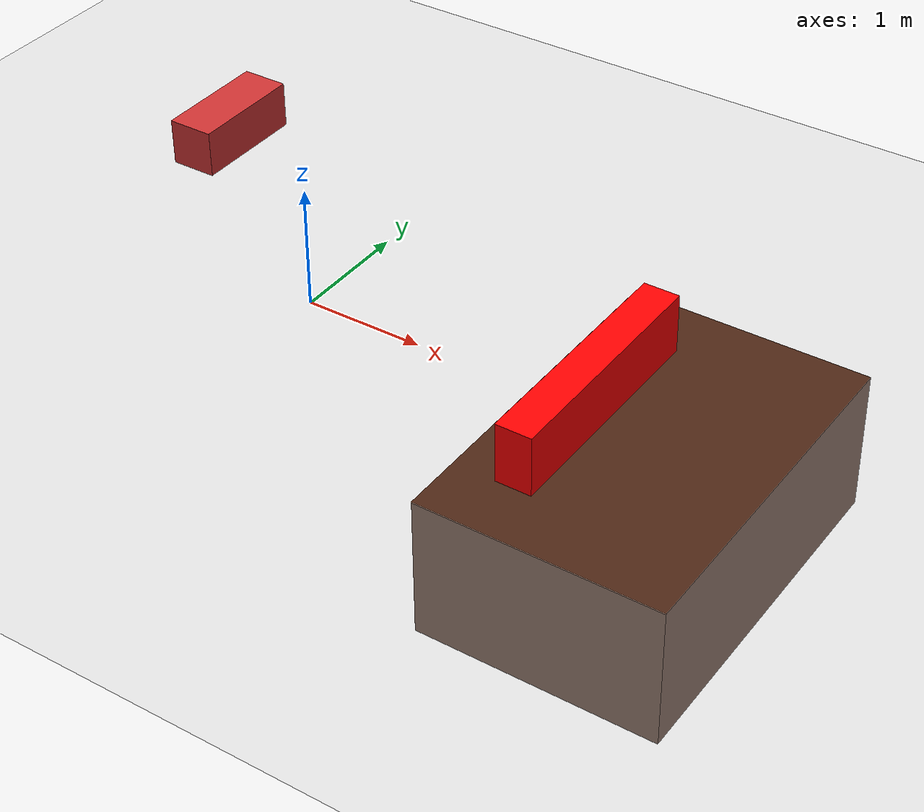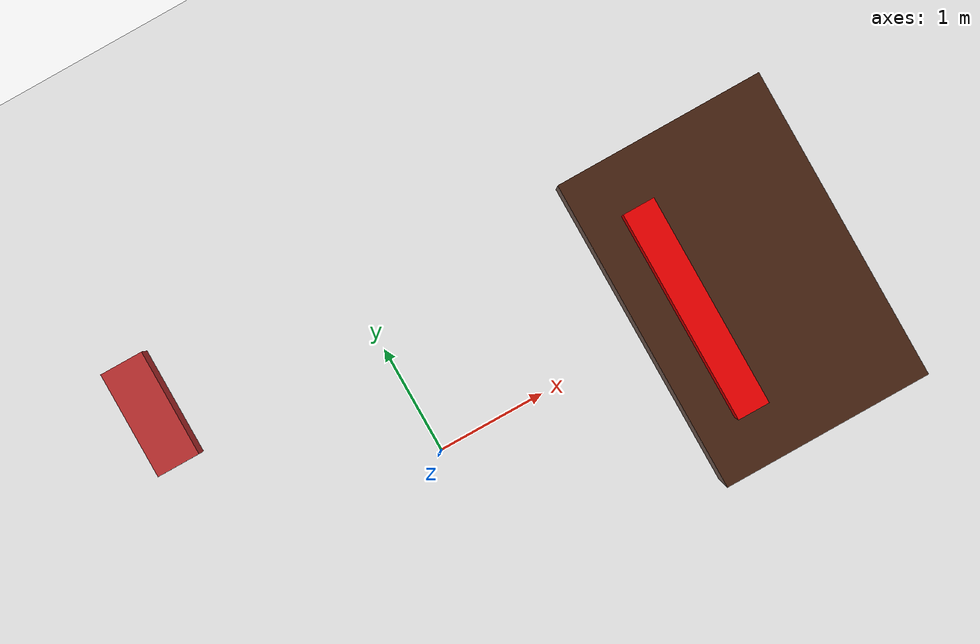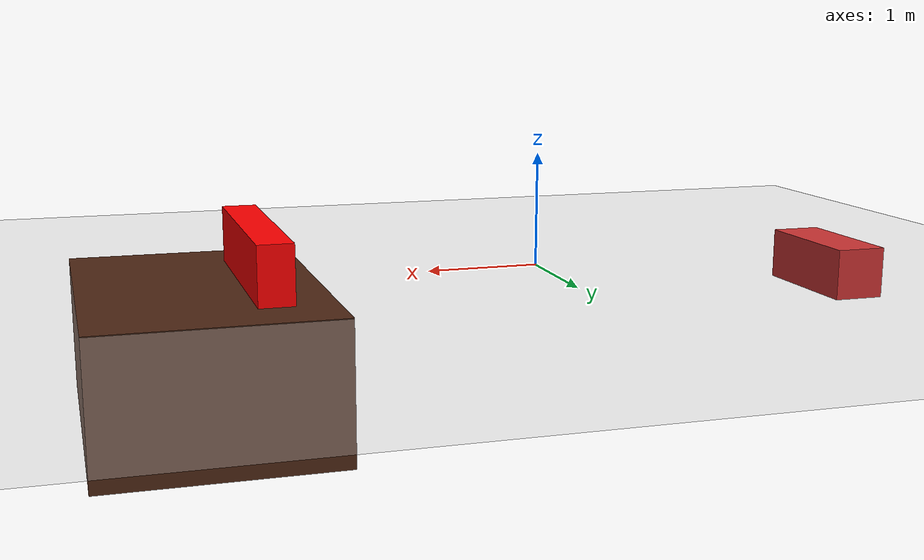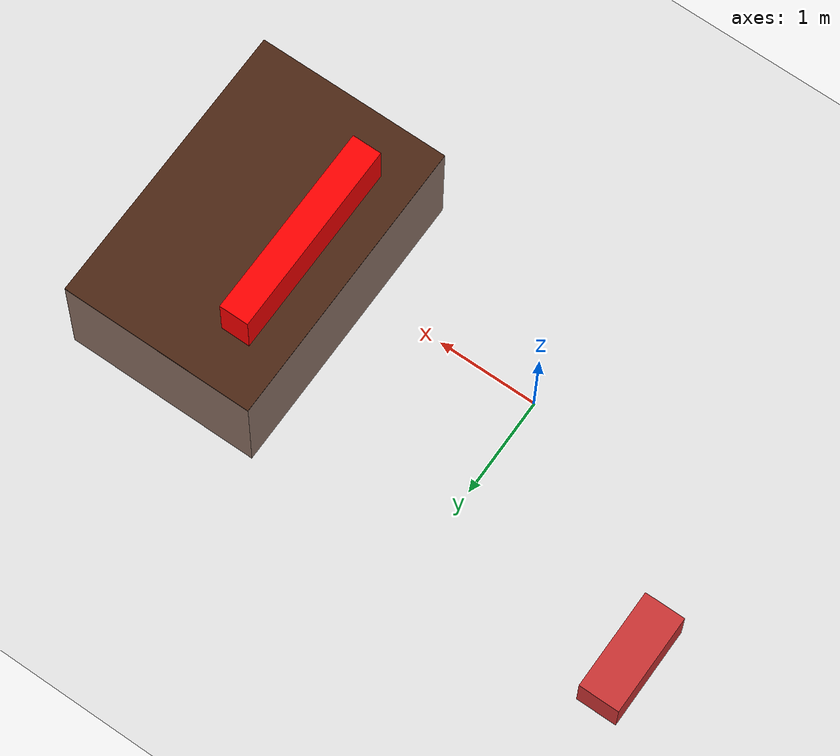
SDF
<?xml version="1.0"?>
<sdf version="1.9">
  <world name="terrain_world">

    <physics name="1ms" type="ignored">
      <max_step_size>0.001</max_step_size>
      <real_time_factor>1.0</real_time_factor>
    </physics>

    <plugin filename="gz-sim-physics-system" name="gz::sim::systems::Physics"/>
    <plugin filename="gz-sim-user-commands-system" name="gz::sim::systems::UserCommands"/>
    <plugin filename="gz-sim-scene-broadcaster-system" name="gz::sim::systems::SceneBroadcaster"/>
    <plugin filename="gz-sim-sensors-system" name="gz::sim::systems::Sensors">
      <render_engine>ogre2</render_engine>
    </plugin>

    <light type="directional" name="sun">
      <cast_shadows>true</cast_shadows>
      <pose>0 0 10 0 0 0</pose>
      <diffuse>0.8 0.8 0.8 1</diffuse>
      <specular>0.2 0.2 0.2 1</specular>
      <attenuation>
        <range>1000</range>
        <constant>0.9</constant>
        <linear>0.01</linear>
        <quadratic>0.001</quadratic>
      </attenuation>
      <direction>-0.5 0.1 -0.9</direction>
    </light>

    <!-- Ground plane -->
    <model name="ground_plane">
      <static>true</static>
      <link name="link">
        <collision name="collision">
          <geometry>
            <plane>
              <normal>0 0 1</normal>
            </plane>
          </geometry>
        </collision>
        <visual name="visual">
          <geometry>
            <plane>
              <normal>0 0 1</normal>
              <size>100 100</size>
            </plane>
          </geometry>
          <material>
            <ambient>0.8 0.8 0.8 1</ambient>
            <diffuse>0.8 0.8 0.8 1</diffuse>
          </material>
        </visual>
      </link>
    </model>

    <!-- VISIBLE OBSTACLE 1 (Red box as "ditch marker") -->
    <model name="obstacle_1">
      <static>true</static>
      <pose>2.5 0 0.25 0 0 0</pose>
      <link name="link">
        <collision name="collision">
          <geometry>
            <box>
              <size>0.3 2.0 0.5</size>
            </box>
          </geometry>
        </collision>
        <visual name="visual">
          <geometry>
            <box>
              <size>0.3 2.0 0.5</size>
            </box>
          </geometry>
          <material>
            <ambient>1 0 0 1</ambient>
            <diffuse>1 0 0 1</diffuse>
          </material>
        </visual>
      </link>
    </model>

    <!-- DEEP DROP/DITCH (actual terrain drop) -->
    <model name="ditch_area">
      <static>true</static>
      <pose>3.0 0 -0.6 0 0 0</pose>
      <link name="link">
        <collision name="collision">
          <geometry>
            <box>
              <size>2.0 3.0 1.2</size>
            </box>
          </geometry>
        </collision>
        <visual name="visual">
          <geometry>
            <box>
              <size>2.0 3.0 1.2</size>
            </box>
          </geometry>
          <material>
            <ambient>0.2 0.1 0.05 1</ambient>
            <diffuse>0.3 0.15 0.08 1</diffuse>
          </material>
        </visual>
      </link>
    </model>

    <!-- Another visible obstacle -->
    <model name="obstacle_2">
      <static>true</static>
      <pose>-2 1.5 0.2 0 0 0</pose>
      <link name="link">
        <collision name="collision">
          <geometry>
            <box>
              <size>0.4 1.0 0.4</size>
            </box>
          </geometry>
        </collision>
        <visual name="visual">
          <geometry>
            <box>
              <size>0.4 1.0 0.4</size>
            </box>
          </geometry>
          <material>
            <ambient>0.8 0.2 0.2 1</ambient>
            <diffuse>0.8 0.2 0.2 1</diffuse>
          </material>
        </visual>
      </link>
    </model>

  </world>
</sdf>
